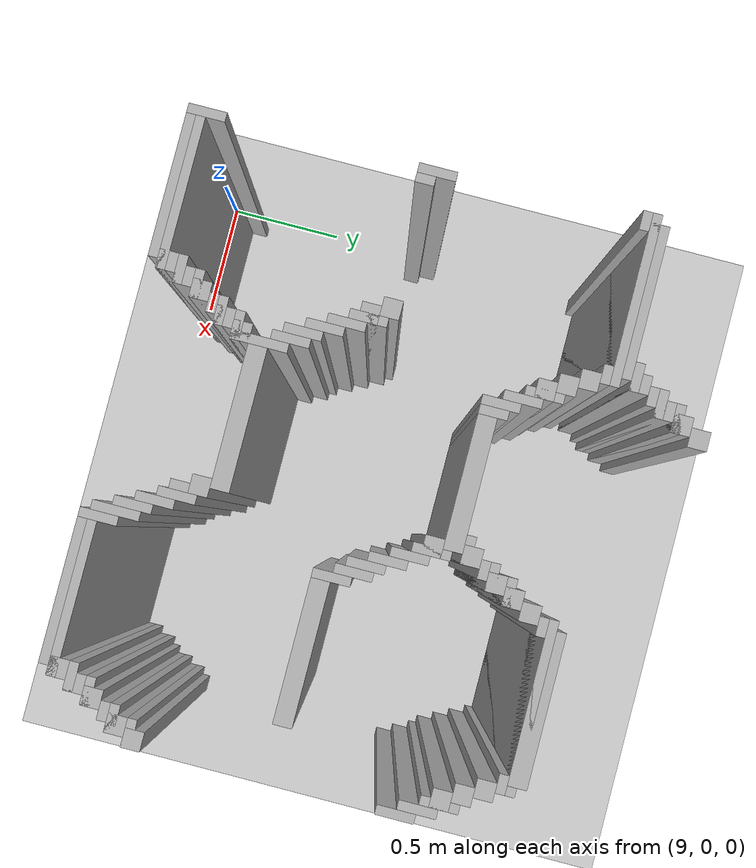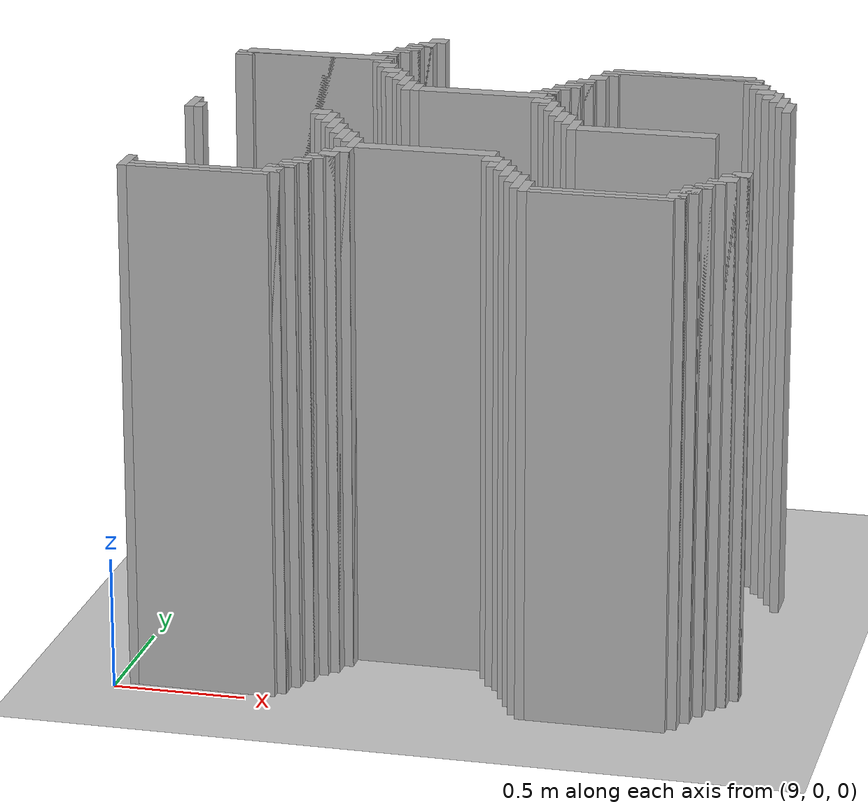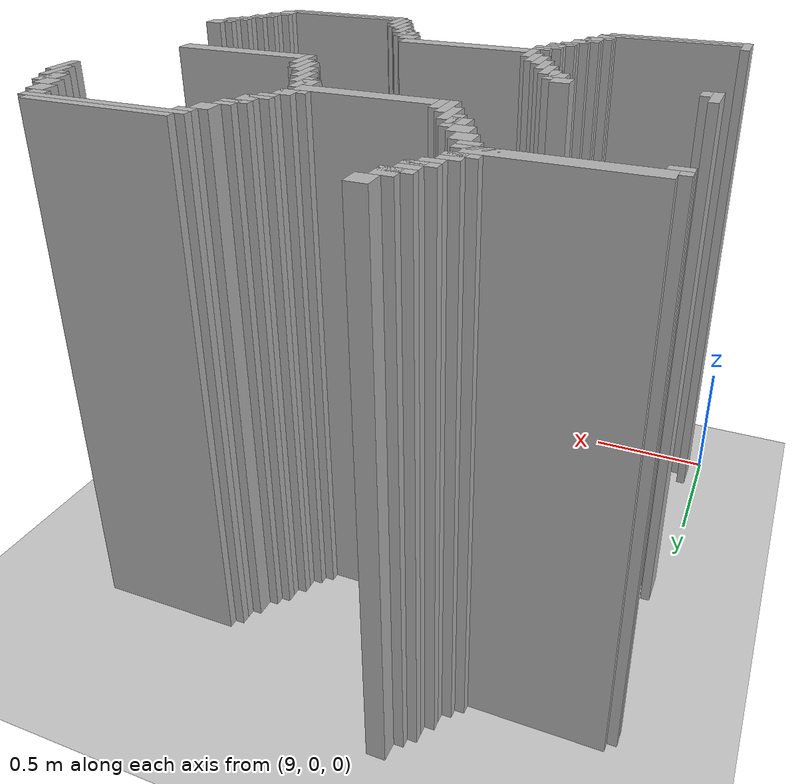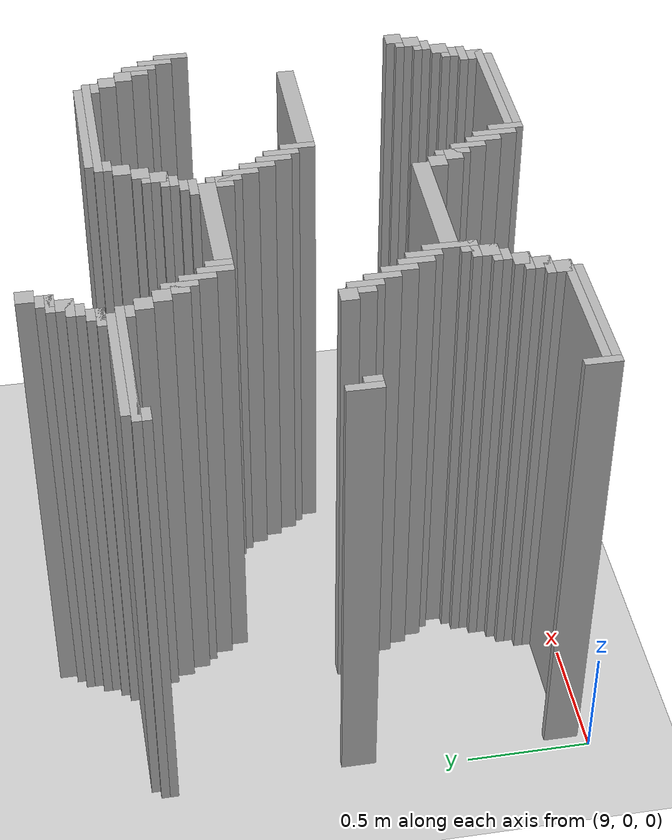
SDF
<sdf version="1.6">
 <world name="slam_world">
  <model name="ground_plane">
   <static>true</static>
   <link name="link">
    <collision name="collision">
     <geometry><plane><normal>0 0 1</normal><size>100 100</size></plane></geometry>
    </collision>
    <visual name="visual">
     <geometry><plane><normal>0 0 1</normal><size>100 100</size></plane></geometry>
     <material>
      <ambient>0.8 0.8 0.8 1</ambient>
      <diffuse>0.8 0.8 0.8 1</diffuse>
      <specular>0.8 0.8 0.8 1</specular>
     </material>
    </visual>
   </link>
  </model>
  <model name="wall_5052">
   <static>true</static>
   <pose>9.744779582366588 2.053364269141531 1.0 0 0 0</pose>
   <link name="link">
    <collision name="collision">
     <geometry><box><size>0.06960556844547564 0.06960556844547564 2.0</size></box></geometry>
    </collision>
    <visual name="visual">
     <geometry><box><size>0.06960556844547564 0.06960556844547564 2.0</size></box></geometry>
     <material><ambient>0.5 0.5 0.5 1</ambient><diffuse>0.7 0.7 0.7 1</diffuse></material>
    </visual>
   </link>
  </model>
  <model name="wall_5065">
   <static>true</static>
   <pose>9.70997679814385 1.9837587006960555 1.0 0 0 0</pose>
   <link name="link">
    <collision name="collision">
     <geometry><box><size>0.06960556844547564 0.06960556844547564 2.0</size></box></geometry>
    </collision>
    <visual name="visual">
     <geometry><box><size>0.06960556844547564 0.06960556844547564 2.0</size></box></geometry>
     <material><ambient>0.5 0.5 0.5 1</ambient><diffuse>0.7 0.7 0.7 1</diffuse></material>
    </visual>
   </link>
  </model>
  <model name="wall_5078">
   <static>true</static>
   <pose>9.692575406032482 1.9663573085846866 1.0 0 0 0</pose>
   <link name="link">
    <collision name="collision">
     <geometry><box><size>0.10440835266821345 0.03480278422273782 2.0</size></box></geometry>
    </collision>
    <visual name="visual">
     <geometry><box><size>0.10440835266821345 0.03480278422273782 2.0</size></box></geometry>
     <material><ambient>0.5 0.5 0.5 1</ambient><diffuse>0.7 0.7 0.7 1</diffuse></material>
    </visual>
   </link>
  </model>
  <model name="wall_5089">
   <static>true</static>
   <pose>9.675174013921113 1.91415313225058 1.0 0 0 0</pose>
   <link name="link">
    <collision name="collision">
     <geometry><box><size>0.06960556844547564 0.06960556844547564 2.0</size></box></geometry>
    </collision>
    <visual name="visual">
     <geometry><box><size>0.06960556844547564 0.06960556844547564 2.0</size></box></geometry>
     <material><ambient>0.5 0.5 0.5 1</ambient><diffuse>0.7 0.7 0.7 1</diffuse></material>
    </visual>
   </link>
  </model>
  <model name="wall_5101">
   <static>true</static>
   <pose>9.657772621809745 1.896751740139211 1.0 0 0 0</pose>
   <link name="link">
    <collision name="collision">
     <geometry><box><size>0.10440835266821345 0.03480278422273782 2.0</size></box></geometry>
    </collision>
    <visual name="visual">
     <geometry><box><size>0.10440835266821345 0.03480278422273782 2.0</size></box></geometry>
     <material><ambient>0.5 0.5 0.5 1</ambient><diffuse>0.7 0.7 0.7 1</diffuse></material>
    </visual>
   </link>
  </model>
  <model name="wall_5110">
   <static>true</static>
   <pose>9.640371229698376 1.8619489559164732 1.0 0 0 0</pose>
   <link name="link">
    <collision name="collision">
     <geometry><box><size>0.06960556844547564 0.03480278422273782 2.0</size></box></geometry>
    </collision>
    <visual name="visual">
     <geometry><box><size>0.06960556844547564 0.03480278422273782 2.0</size></box></geometry>
     <material><ambient>0.5 0.5 0.5 1</ambient><diffuse>0.7 0.7 0.7 1</diffuse></material>
    </visual>
   </link>
  </model>
  <model name="wall_5120">
   <static>true</static>
   <pose>9.605568445475638 1.8097447795823665 1.0 0 0 0</pose>
   <link name="link">
    <collision name="collision">
     <geometry><box><size>0.06960556844547564 0.06960556844547564 2.0</size></box></geometry>
    </collision>
    <visual name="visual">
     <geometry><box><size>0.06960556844547564 0.06960556844547564 2.0</size></box></geometry>
     <material><ambient>0.5 0.5 0.5 1</ambient><diffuse>0.7 0.7 0.7 1</diffuse></material>
    </visual>
   </link>
  </model>
  <model name="wall_5133">
   <static>true</static>
   <pose>9.588167053364268 1.7923433874709975 1.0 0 0 0</pose>
   <link name="link">
    <collision name="collision">
     <geometry><box><size>0.10440835266821345 0.03480278422273782 2.0</size></box></geometry>
    </collision>
    <visual name="visual">
     <geometry><box><size>0.10440835266821345 0.03480278422273782 2.0</size></box></geometry>
     <material><ambient>0.5 0.5 0.5 1</ambient><diffuse>0.7 0.7 0.7 1</diffuse></material>
    </visual>
   </link>
  </model>
  <model name="wall_5145">
   <static>true</static>
   <pose>9.327146171693736 1.740139211136891 1.0 0 0 0</pose>
   <link name="link">
    <collision name="collision">
     <geometry><box><size>0.5568445475638051 0.06960556844547564 2.0</size></box></geometry>
    </collision>
    <visual name="visual">
     <geometry><box><size>0.5568445475638051 0.06960556844547564 2.0</size></box></geometry>
     <material><ambient>0.5 0.5 0.5 1</ambient><diffuse>0.7 0.7 0.7 1</diffuse></material>
    </visual>
   </link>
  </model>
  <model name="wall_5146">
   <static>true</static>
   <pose>10.788863109048723 1.740139211136891 1.0 0 0 0</pose>
   <link name="link">
    <collision name="collision">
     <geometry><box><size>0.5568445475638051 0.06960556844547564 2.0</size></box></geometry>
    </collision>
    <visual name="visual">
     <geometry><box><size>0.5568445475638051 0.06960556844547564 2.0</size></box></geometry>
     <material><ambient>0.5 0.5 0.5 1</ambient><diffuse>0.7 0.7 0.7 1</diffuse></material>
    </visual>
   </link>
  </model>
  <model name="wall_5156">
   <static>true</static>
   <pose>9.327146171693736 1.722737819025522 1.0 0 0 0</pose>
   <link name="link">
    <collision name="collision">
     <geometry><box><size>0.6264501160092807 0.03480278422273782 2.0</size></box></geometry>
    </collision>
    <visual name="visual">
     <geometry><box><size>0.6264501160092807 0.03480278422273782 2.0</size></box></geometry>
     <material><ambient>0.5 0.5 0.5 1</ambient><diffuse>0.7 0.7 0.7 1</diffuse></material>
    </visual>
   </link>
  </model>
  <model name="wall_5157">
   <static>true</static>
   <pose>10.788863109048723 1.722737819025522 1.0 0 0 0</pose>
   <link name="link">
    <collision name="collision">
     <geometry><box><size>0.6264501160092807 0.03480278422273782 2.0</size></box></geometry>
    </collision>
    <visual name="visual">
     <geometry><box><size>0.6264501160092807 0.03480278422273782 2.0</size></box></geometry>
     <material><ambient>0.5 0.5 0.5 1</ambient><diffuse>0.7 0.7 0.7 1</diffuse></material>
    </visual>
   </link>
  </model>
  <model name="wall_5170">
   <static>true</static>
   <pose>9.048723897911833 1.6879350348027842 1.0 0 0 0</pose>
   <link name="link">
    <collision name="collision">
     <geometry><box><size>0.06960556844547564 0.03480278422273782 2.0</size></box></geometry>
    </collision>
    <visual name="visual">
     <geometry><box><size>0.06960556844547564 0.03480278422273782 2.0</size></box></geometry>
     <material><ambient>0.5 0.5 0.5 1</ambient><diffuse>0.7 0.7 0.7 1</diffuse></material>
    </visual>
   </link>
  </model>
  <model name="wall_5171">
   <static>true</static>
   <pose>9.605568445475638 1.6879350348027842 1.0 0 0 0</pose>
   <link name="link">
    <collision name="collision">
     <geometry><box><size>0.06960556844547564 0.03480278422273782 2.0</size></box></geometry>
    </collision>
    <visual name="visual">
     <geometry><box><size>0.06960556844547564 0.03480278422273782 2.0</size></box></geometry>
     <material><ambient>0.5 0.5 0.5 1</ambient><diffuse>0.7 0.7 0.7 1</diffuse></material>
    </visual>
   </link>
  </model>
  <model name="wall_5172">
   <static>true</static>
   <pose>10.51044083526682 1.6879350348027842 1.0 0 0 0</pose>
   <link name="link">
    <collision name="collision">
     <geometry><box><size>0.06960556844547564 0.03480278422273782 2.0</size></box></geometry>
    </collision>
    <visual name="visual">
     <geometry><box><size>0.06960556844547564 0.03480278422273782 2.0</size></box></geometry>
     <material><ambient>0.5 0.5 0.5 1</ambient><diffuse>0.7 0.7 0.7 1</diffuse></material>
    </visual>
   </link>
  </model>
  <model name="wall_5173">
   <static>true</static>
   <pose>11.067285382830626 1.6879350348027842 1.0 0 0 0</pose>
   <link name="link">
    <collision name="collision">
     <geometry><box><size>0.06960556844547564 0.03480278422273782 2.0</size></box></geometry>
    </collision>
    <visual name="visual">
     <geometry><box><size>0.06960556844547564 0.03480278422273782 2.0</size></box></geometry>
     <material><ambient>0.5 0.5 0.5 1</ambient><diffuse>0.7 0.7 0.7 1</diffuse></material>
    </visual>
   </link>
  </model>
  <model name="wall_5187">
   <static>true</static>
   <pose>9.640371229698376 1.6357308584686774 1.0 0 0 0</pose>
   <link name="link">
    <collision name="collision">
     <geometry><box><size>0.06960556844547564 0.06960556844547564 2.0</size></box></geometry>
    </collision>
    <visual name="visual">
     <geometry><box><size>0.06960556844547564 0.06960556844547564 2.0</size></box></geometry>
     <material><ambient>0.5 0.5 0.5 1</ambient><diffuse>0.7 0.7 0.7 1</diffuse></material>
    </visual>
   </link>
  </model>
  <model name="wall_5188">
   <static>true</static>
   <pose>10.475638051044083 1.6357308584686774 1.0 0 0 0</pose>
   <link name="link">
    <collision name="collision">
     <geometry><box><size>0.06960556844547564 0.06960556844547564 2.0</size></box></geometry>
    </collision>
    <visual name="visual">
     <geometry><box><size>0.06960556844547564 0.06960556844547564 2.0</size></box></geometry>
     <material><ambient>0.5 0.5 0.5 1</ambient><diffuse>0.7 0.7 0.7 1</diffuse></material>
    </visual>
   </link>
  </model>
  <model name="wall_5189">
   <static>true</static>
   <pose>11.102088167053363 1.6357308584686774 1.0 0 0 0</pose>
   <link name="link">
    <collision name="collision">
     <geometry><box><size>0.06960556844547564 0.06960556844547564 2.0</size></box></geometry>
    </collision>
    <visual name="visual">
     <geometry><box><size>0.06960556844547564 0.06960556844547564 2.0</size></box></geometry>
     <material><ambient>0.5 0.5 0.5 1</ambient><diffuse>0.7 0.7 0.7 1</diffuse></material>
    </visual>
   </link>
  </model>
  <model name="wall_5203">
   <static>true</static>
   <pose>9.675174013921113 1.5661252900232019 1.0 0 0 0</pose>
   <link name="link">
    <collision name="collision">
     <geometry><box><size>0.06960556844547564 0.06960556844547564 2.0</size></box></geometry>
    </collision>
    <visual name="visual">
     <geometry><box><size>0.06960556844547564 0.06960556844547564 2.0</size></box></geometry>
     <material><ambient>0.5 0.5 0.5 1</ambient><diffuse>0.7 0.7 0.7 1</diffuse></material>
    </visual>
   </link>
  </model>
  <model name="wall_5204">
   <static>true</static>
   <pose>10.440835266821345 1.5661252900232019 1.0 0 0 0</pose>
   <link name="link">
    <collision name="collision">
     <geometry><box><size>0.06960556844547564 0.06960556844547564 2.0</size></box></geometry>
    </collision>
    <visual name="visual">
     <geometry><box><size>0.06960556844547564 0.06960556844547564 2.0</size></box></geometry>
     <material><ambient>0.5 0.5 0.5 1</ambient><diffuse>0.7 0.7 0.7 1</diffuse></material>
    </visual>
   </link>
  </model>
  <model name="wall_5205">
   <static>true</static>
   <pose>11.1368909512761 1.5661252900232019 1.0 0 0 0</pose>
   <link name="link">
    <collision name="collision">
     <geometry><box><size>0.06960556844547564 0.06960556844547564 2.0</size></box></geometry>
    </collision>
    <visual name="visual">
     <geometry><box><size>0.06960556844547564 0.06960556844547564 2.0</size></box></geometry>
     <material><ambient>0.5 0.5 0.5 1</ambient><diffuse>0.7 0.7 0.7 1</diffuse></material>
    </visual>
   </link>
  </model>
  <model name="wall_5219">
   <static>true</static>
   <pose>9.72737819025522 1.4965197215777262 1.0 0 0 0</pose>
   <link name="link">
    <collision name="collision">
     <geometry><box><size>0.03480278422273782 0.13921113689095127 2.0</size></box></geometry>
    </collision>
    <visual name="visual">
     <geometry><box><size>0.03480278422273782 0.13921113689095127 2.0</size></box></geometry>
     <material><ambient>0.5 0.5 0.5 1</ambient><diffuse>0.7 0.7 0.7 1</diffuse></material>
    </visual>
   </link>
  </model>
  <model name="wall_5220">
   <static>true</static>
   <pose>10.423433874709977 1.548723897911833 1.0 0 0 0</pose>
   <link name="link">
    <collision name="collision">
     <geometry><box><size>0.10440835266821345 0.03480278422273782 2.0</size></box></geometry>
    </collision>
    <visual name="visual">
     <geometry><box><size>0.10440835266821345 0.03480278422273782 2.0</size></box></geometry>
     <material><ambient>0.5 0.5 0.5 1</ambient><diffuse>0.7 0.7 0.7 1</diffuse></material>
    </visual>
   </link>
  </model>
  <model name="wall_5221">
   <static>true</static>
   <pose>11.189095127610209 1.4965197215777262 1.0 0 0 0</pose>
   <link name="link">
    <collision name="collision">
     <geometry><box><size>0.03480278422273782 0.13921113689095127 2.0</size></box></geometry>
    </collision>
    <visual name="visual">
     <geometry><box><size>0.03480278422273782 0.13921113689095127 2.0</size></box></geometry>
     <material><ambient>0.5 0.5 0.5 1</ambient><diffuse>0.7 0.7 0.7 1</diffuse></material>
    </visual>
   </link>
  </model>
  <model name="wall_5234">
   <static>true</static>
   <pose>9.70997679814385 1.4965197215777262 1.0 0 0 0</pose>
   <link name="link">
    <collision name="collision">
     <geometry><box><size>0.06960556844547564 0.06960556844547564 2.0</size></box></geometry>
    </collision>
    <visual name="visual">
     <geometry><box><size>0.06960556844547564 0.06960556844547564 2.0</size></box></geometry>
     <material><ambient>0.5 0.5 0.5 1</ambient><diffuse>0.7 0.7 0.7 1</diffuse></material>
    </visual>
   </link>
  </model>
  <model name="wall_5235">
   <static>true</static>
   <pose>10.406032482598608 1.4965197215777262 1.0 0 0 0</pose>
   <link name="link">
    <collision name="collision">
     <geometry><box><size>0.06960556844547564 0.06960556844547564 2.0</size></box></geometry>
    </collision>
    <visual name="visual">
     <geometry><box><size>0.06960556844547564 0.06960556844547564 2.0</size></box></geometry>
     <material><ambient>0.5 0.5 0.5 1</ambient><diffuse>0.7 0.7 0.7 1</diffuse></material>
    </visual>
   </link>
  </model>
  <model name="wall_5236">
   <static>true</static>
   <pose>11.17169373549884 1.4965197215777262 1.0 0 0 0</pose>
   <link name="link">
    <collision name="collision">
     <geometry><box><size>0.06960556844547564 0.06960556844547564 2.0</size></box></geometry>
    </collision>
    <visual name="visual">
     <geometry><box><size>0.06960556844547564 0.06960556844547564 2.0</size></box></geometry>
     <material><ambient>0.5 0.5 0.5 1</ambient><diffuse>0.7 0.7 0.7 1</diffuse></material>
    </visual>
   </link>
  </model>
  <model name="wall_5248">
   <static>true</static>
   <pose>9.762180974477959 1.4269141531322505 1.0 0 0 0</pose>
   <link name="link">
    <collision name="collision">
     <geometry><box><size>0.03480278422273782 0.13921113689095127 2.0</size></box></geometry>
    </collision>
    <visual name="visual">
     <geometry><box><size>0.03480278422273782 0.13921113689095127 2.0</size></box></geometry>
     <material><ambient>0.5 0.5 0.5 1</ambient><diffuse>0.7 0.7 0.7 1</diffuse></material>
    </visual>
   </link>
  </model>
  <model name="wall_5249">
   <static>true</static>
   <pose>10.38863109048724 1.4791183294663572 1.0 0 0 0</pose>
   <link name="link">
    <collision name="collision">
     <geometry><box><size>0.10440835266821345 0.03480278422273782 2.0</size></box></geometry>
    </collision>
    <visual name="visual">
     <geometry><box><size>0.10440835266821345 0.03480278422273782 2.0</size></box></geometry>
     <material><ambient>0.5 0.5 0.5 1</ambient><diffuse>0.7 0.7 0.7 1</diffuse></material>
    </visual>
   </link>
  </model>
  <model name="wall_5250">
   <static>true</static>
   <pose>11.223897911832946 1.4269141531322505 1.0 0 0 0</pose>
   <link name="link">
    <collision name="collision">
     <geometry><box><size>0.03480278422273782 0.13921113689095127 2.0</size></box></geometry>
    </collision>
    <visual name="visual">
     <geometry><box><size>0.03480278422273782 0.13921113689095127 2.0</size></box></geometry>
     <material><ambient>0.5 0.5 0.5 1</ambient><diffuse>0.7 0.7 0.7 1</diffuse></material>
    </visual>
   </link>
  </model>
  <model name="wall_5262">
   <static>true</static>
   <pose>10.37122969837587 1.4443155452436194 1.0 0 0 0</pose>
   <link name="link">
    <collision name="collision">
     <geometry><box><size>0.06960556844547564 0.03480278422273782 2.0</size></box></geometry>
    </collision>
    <visual name="visual">
     <geometry><box><size>0.06960556844547564 0.03480278422273782 2.0</size></box></geometry>
     <material><ambient>0.5 0.5 0.5 1</ambient><diffuse>0.7 0.7 0.7 1</diffuse></material>
    </visual>
   </link>
  </model>
  <model name="wall_5274">
   <static>true</static>
   <pose>9.796983758700696 1.357308584686775 1.0 0 0 0</pose>
   <link name="link">
    <collision name="collision">
     <geometry><box><size>0.03480278422273782 0.13921113689095127 2.0</size></box></geometry>
    </collision>
    <visual name="visual">
     <geometry><box><size>0.03480278422273782 0.13921113689095127 2.0</size></box></geometry>
     <material><ambient>0.5 0.5 0.5 1</ambient><diffuse>0.7 0.7 0.7 1</diffuse></material>
    </visual>
   </link>
  </model>
  <model name="wall_5275">
   <static>true</static>
   <pose>10.336426914153131 1.3921113689095126 1.0 0 0 0</pose>
   <link name="link">
    <collision name="collision">
     <geometry><box><size>0.06960556844547564 0.06960556844547564 2.0</size></box></geometry>
    </collision>
    <visual name="visual">
     <geometry><box><size>0.06960556844547564 0.06960556844547564 2.0</size></box></geometry>
     <material><ambient>0.5 0.5 0.5 1</ambient><diffuse>0.7 0.7 0.7 1</diffuse></material>
    </visual>
   </link>
  </model>
  <model name="wall_5276">
   <static>true</static>
   <pose>11.258700696055683 1.357308584686775 1.0 0 0 0</pose>
   <link name="link">
    <collision name="collision">
     <geometry><box><size>0.03480278422273782 0.13921113689095127 2.0</size></box></geometry>
    </collision>
    <visual name="visual">
     <geometry><box><size>0.03480278422273782 0.13921113689095127 2.0</size></box></geometry>
     <material><ambient>0.5 0.5 0.5 1</ambient><diffuse>0.7 0.7 0.7 1</diffuse></material>
    </visual>
   </link>
  </model>
  <model name="wall_5288">
   <static>true</static>
   <pose>9.831786542923433 1.339907192575406 1.0 0 0 0</pose>
   <link name="link">
    <collision name="collision">
     <geometry><box><size>0.03480278422273782 0.10440835266821345 2.0</size></box></geometry>
    </collision>
    <visual name="visual">
     <geometry><box><size>0.03480278422273782 0.10440835266821345 2.0</size></box></geometry>
     <material><ambient>0.5 0.5 0.5 1</ambient><diffuse>0.7 0.7 0.7 1</diffuse></material>
    </visual>
   </link>
  </model>
  <model name="wall_5289">
   <static>true</static>
   <pose>10.319025522041763 1.3747099767981439 1.0 0 0 0</pose>
   <link name="link">
    <collision name="collision">
     <geometry><box><size>0.10440835266821345 0.03480278422273782 2.0</size></box></geometry>
    </collision>
    <visual name="visual">
     <geometry><box><size>0.10440835266821345 0.03480278422273782 2.0</size></box></geometry>
     <material><ambient>0.5 0.5 0.5 1</ambient><diffuse>0.7 0.7 0.7 1</diffuse></material>
    </visual>
   </link>
  </model>
  <model name="wall_5301">
   <static>true</static>
   <pose>10.092807424593968 1.322505800464037 1.0 0 0 0</pose>
   <link name="link">
    <collision name="collision">
     <geometry><box><size>0.4872389791183295 0.06960556844547564 2.0</size></box></geometry>
    </collision>
    <visual name="visual">
     <geometry><box><size>0.4872389791183295 0.06960556844547564 2.0</size></box></geometry>
     <material><ambient>0.5 0.5 0.5 1</ambient><diffuse>0.7 0.7 0.7 1</diffuse></material>
    </visual>
   </link>
  </model>
  <model name="wall_5313">
   <static>true</static>
   <pose>10.3538283062645 1.2529002320185614 1.0 0 0 0</pose>
   <link name="link">
    <collision name="collision">
     <geometry><box><size>0.03480278422273782 0.13921113689095127 2.0</size></box></geometry>
    </collision>
    <visual name="visual">
     <geometry><box><size>0.03480278422273782 0.13921113689095127 2.0</size></box></geometry>
     <material><ambient>0.5 0.5 0.5 1</ambient><diffuse>0.7 0.7 0.7 1</diffuse></material>
    </visual>
   </link>
  </model>
  <model name="wall_5326">
   <static>true</static>
   <pose>10.336426914153131 1.2529002320185614 1.0 0 0 0</pose>
   <link name="link">
    <collision name="collision">
     <geometry><box><size>0.06960556844547564 0.06960556844547564 2.0</size></box></geometry>
    </collision>
    <visual name="visual">
     <geometry><box><size>0.06960556844547564 0.06960556844547564 2.0</size></box></geometry>
     <material><ambient>0.5 0.5 0.5 1</ambient><diffuse>0.7 0.7 0.7 1</diffuse></material>
    </visual>
   </link>
  </model>
  <model name="wall_5340">
   <static>true</static>
   <pose>10.38863109048724 1.1832946635730859 1.0 0 0 0</pose>
   <link name="link">
    <collision name="collision">
     <geometry><box><size>0.03480278422273782 0.13921113689095127 2.0</size></box></geometry>
    </collision>
    <visual name="visual">
     <geometry><box><size>0.03480278422273782 0.13921113689095127 2.0</size></box></geometry>
     <material><ambient>0.5 0.5 0.5 1</ambient><diffuse>0.7 0.7 0.7 1</diffuse></material>
    </visual>
   </link>
  </model>
  <model name="wall_5363">
   <static>true</static>
   <pose>10.423433874709977 1.1136890951276102 1.0 0 0 0</pose>
   <link name="link">
    <collision name="collision">
     <geometry><box><size>0.03480278422273782 0.13921113689095127 2.0</size></box></geometry>
    </collision>
    <visual name="visual">
     <geometry><box><size>0.03480278422273782 0.13921113689095127 2.0</size></box></geometry>
     <material><ambient>0.5 0.5 0.5 1</ambient><diffuse>0.7 0.7 0.7 1</diffuse></material>
    </visual>
   </link>
  </model>
  <model name="wall_5377">
   <static>true</static>
   <pose>10.458236658932714 1.0440835266821344 1.0 0 0 0</pose>
   <link name="link">
    <collision name="collision">
     <geometry><box><size>0.03480278422273782 0.13921113689095127 2.0</size></box></geometry>
    </collision>
    <visual name="visual">
     <geometry><box><size>0.03480278422273782 0.13921113689095127 2.0</size></box></geometry>
     <material><ambient>0.5 0.5 0.5 1</ambient><diffuse>0.7 0.7 0.7 1</diffuse></material>
    </visual>
   </link>
  </model>
  <model name="wall_5391">
   <static>true</static>
   <pose>10.493039443155451 1.0092807424593968 1.0 0 0 0</pose>
   <link name="link">
    <collision name="collision">
     <geometry><box><size>0.03480278422273782 0.13921113689095127 2.0</size></box></geometry>
    </collision>
    <visual name="visual">
     <geometry><box><size>0.03480278422273782 0.13921113689095127 2.0</size></box></geometry>
     <material><ambient>0.5 0.5 0.5 1</ambient><diffuse>0.7 0.7 0.7 1</diffuse></material>
    </visual>
   </link>
  </model>
  <model name="wall_5410">
   <static>true</static>
   <pose>9.066125290023201 0.9396751740139211 1.0 0 0 0</pose>
   <link name="link">
    <collision name="collision">
     <geometry><box><size>0.03480278422273782 0.13921113689095127 2.0</size></box></geometry>
    </collision>
    <visual name="visual">
     <geometry><box><size>0.03480278422273782 0.13921113689095127 2.0</size></box></geometry>
     <material><ambient>0.5 0.5 0.5 1</ambient><diffuse>0.7 0.7 0.7 1</diffuse></material>
    </visual>
   </link>
  </model>
  <model name="wall_5411">
   <static>true</static>
   <pose>10.52784222737819 0.9396751740139211 1.0 0 0 0</pose>
   <link name="link">
    <collision name="collision">
     <geometry><box><size>0.03480278422273782 0.13921113689095127 2.0</size></box></geometry>
    </collision>
    <visual name="visual">
     <geometry><box><size>0.03480278422273782 0.13921113689095127 2.0</size></box></geometry>
     <material><ambient>0.5 0.5 0.5 1</ambient><diffuse>0.7 0.7 0.7 1</diffuse></material>
    </visual>
   </link>
  </model>
  <model name="wall_5430">
   <static>true</static>
   <pose>9.100928074245939 0.9048723897911832 1.0 0 0 0</pose>
   <link name="link">
    <collision name="collision">
     <geometry><box><size>0.03480278422273782 0.06960556844547564 2.0</size></box></geometry>
    </collision>
    <visual name="visual">
     <geometry><box><size>0.03480278422273782 0.06960556844547564 2.0</size></box></geometry>
     <material><ambient>0.5 0.5 0.5 1</ambient><diffuse>0.7 0.7 0.7 1</diffuse></material>
    </visual>
   </link>
  </model>
  <model name="wall_5431">
   <static>true</static>
   <pose>9.5707656612529 0.9048723897911832 1.0 0 0 0</pose>
   <link name="link">
    <collision name="collision">
     <geometry><box><size>0.06960556844547564 0.06960556844547564 2.0</size></box></geometry>
    </collision>
    <visual name="visual">
     <geometry><box><size>0.06960556844547564 0.06960556844547564 2.0</size></box></geometry>
     <material><ambient>0.5 0.5 0.5 1</ambient><diffuse>0.7 0.7 0.7 1</diffuse></material>
    </visual>
   </link>
  </model>
  <model name="wall_5432">
   <static>true</static>
   <pose>10.806264501160092 0.9048723897911832 1.0 0 0 0</pose>
   <link name="link">
    <collision name="collision">
     <geometry><box><size>0.5220417633410672 0.06960556844547564 2.0</size></box></geometry>
    </collision>
    <visual name="visual">
     <geometry><box><size>0.5220417633410672 0.06960556844547564 2.0</size></box></geometry>
     <material><ambient>0.5 0.5 0.5 1</ambient><diffuse>0.7 0.7 0.7 1</diffuse></material>
    </visual>
   </link>
  </model>
  <model name="wall_5444">
   <static>true</static>
   <pose>9.622969837587007 0.8352668213457076 1.0 0 0 0</pose>
   <link name="link">
    <collision name="collision">
     <geometry><box><size>0.03480278422273782 0.13921113689095127 2.0</size></box></geometry>
    </collision>
    <visual name="visual">
     <geometry><box><size>0.03480278422273782 0.13921113689095127 2.0</size></box></geometry>
     <material><ambient>0.5 0.5 0.5 1</ambient><diffuse>0.7 0.7 0.7 1</diffuse></material>
    </visual>
   </link>
  </model>
  <model name="wall_5454">
   <static>true</static>
   <pose>9.605568445475638 0.8352668213457076 1.0 0 0 0</pose>
   <link name="link">
    <collision name="collision">
     <geometry><box><size>0.06960556844547564 0.06960556844547564 2.0</size></box></geometry>
    </collision>
    <visual name="visual">
     <geometry><box><size>0.06960556844547564 0.06960556844547564 2.0</size></box></geometry>
     <material><ambient>0.5 0.5 0.5 1</ambient><diffuse>0.7 0.7 0.7 1</diffuse></material>
    </visual>
   </link>
  </model>
  <model name="wall_5464">
   <static>true</static>
   <pose>9.657772621809745 0.765661252900232 1.0 0 0 0</pose>
   <link name="link">
    <collision name="collision">
     <geometry><box><size>0.03480278422273782 0.13921113689095127 2.0</size></box></geometry>
    </collision>
    <visual name="visual">
     <geometry><box><size>0.03480278422273782 0.13921113689095127 2.0</size></box></geometry>
     <material><ambient>0.5 0.5 0.5 1</ambient><diffuse>0.7 0.7 0.7 1</diffuse></material>
    </visual>
   </link>
  </model>
  <model name="wall_5480">
   <static>true</static>
   <pose>9.692575406032482 0.6960556844547563 1.0 0 0 0</pose>
   <link name="link">
    <collision name="collision">
     <geometry><box><size>0.03480278422273782 0.13921113689095127 2.0</size></box></geometry>
    </collision>
    <visual name="visual">
     <geometry><box><size>0.03480278422273782 0.13921113689095127 2.0</size></box></geometry>
     <material><ambient>0.5 0.5 0.5 1</ambient><diffuse>0.7 0.7 0.7 1</diffuse></material>
    </visual>
   </link>
  </model>
  <model name="wall_5490">
   <static>true</static>
   <pose>9.72737819025522 0.6264501160092807 1.0 0 0 0</pose>
   <link name="link">
    <collision name="collision">
     <geometry><box><size>0.03480278422273782 0.13921113689095127 2.0</size></box></geometry>
    </collision>
    <visual name="visual">
     <geometry><box><size>0.03480278422273782 0.13921113689095127 2.0</size></box></geometry>
     <material><ambient>0.5 0.5 0.5 1</ambient><diffuse>0.7 0.7 0.7 1</diffuse></material>
    </visual>
   </link>
  </model>
  <model name="wall_5500">
   <static>true</static>
   <pose>9.762180974477959 0.5916473317865429 1.0 0 0 0</pose>
   <link name="link">
    <collision name="collision">
     <geometry><box><size>0.03480278422273782 0.13921113689095127 2.0</size></box></geometry>
    </collision>
    <visual name="visual">
     <geometry><box><size>0.03480278422273782 0.13921113689095127 2.0</size></box></geometry>
     <material><ambient>0.5 0.5 0.5 1</ambient><diffuse>0.7 0.7 0.7 1</diffuse></material>
    </visual>
   </link>
  </model>
  <model name="wall_5516">
   <static>true</static>
   <pose>9.796983758700696 0.4872389791183295 1.0 0 0 0</pose>
   <link name="link">
    <collision name="collision">
     <geometry><box><size>0.03480278422273782 0.2088167053364269 2.0</size></box></geometry>
    </collision>
    <visual name="visual">
     <geometry><box><size>0.03480278422273782 0.2088167053364269 2.0</size></box></geometry>
     <material><ambient>0.5 0.5 0.5 1</ambient><diffuse>0.7 0.7 0.7 1</diffuse></material>
    </visual>
   </link>
  </model>
  <model name="wall_5532">
   <static>true</static>
   <pose>10.075406032482599 0.4872389791183295 1.0 0 0 0</pose>
   <link name="link">
    <collision name="collision">
     <geometry><box><size>0.5220417633410672 0.06960556844547564 2.0</size></box></geometry>
    </collision>
    <visual name="visual">
     <geometry><box><size>0.5220417633410672 0.06960556844547564 2.0</size></box></geometry>
     <material><ambient>0.5 0.5 0.5 1</ambient><diffuse>0.7 0.7 0.7 1</diffuse></material>
    </visual>
   </link>
  </model>
  <model name="wall_5549">
   <static>true</static>
   <pose>9.779582366589327 0.4176334106728538 1.0 0 0 0</pose>
   <link name="link">
    <collision name="collision">
     <geometry><box><size>0.06960556844547564 0.06960556844547564 2.0</size></box></geometry>
    </collision>
    <visual name="visual">
     <geometry><box><size>0.06960556844547564 0.06960556844547564 2.0</size></box></geometry>
     <material><ambient>0.5 0.5 0.5 1</ambient><diffuse>0.7 0.7 0.7 1</diffuse></material>
    </visual>
   </link>
  </model>
  <model name="wall_5550">
   <static>true</static>
   <pose>10.336426914153131 0.4176334106728538 1.0 0 0 0</pose>
   <link name="link">
    <collision name="collision">
     <geometry><box><size>0.06960556844547564 0.06960556844547564 2.0</size></box></geometry>
    </collision>
    <visual name="visual">
     <geometry><box><size>0.06960556844547564 0.06960556844547564 2.0</size></box></geometry>
     <material><ambient>0.5 0.5 0.5 1</ambient><diffuse>0.7 0.7 0.7 1</diffuse></material>
    </visual>
   </link>
  </model>
  <model name="wall_5551">
   <static>true</static>
   <pose>11.241299303944315 0.4176334106728538 1.0 0 0 0</pose>
   <link name="link">
    <collision name="collision">
     <geometry><box><size>0.06960556844547564 0.06960556844547564 2.0</size></box></geometry>
    </collision>
    <visual name="visual">
     <geometry><box><size>0.06960556844547564 0.06960556844547564 2.0</size></box></geometry>
     <material><ambient>0.5 0.5 0.5 1</ambient><diffuse>0.7 0.7 0.7 1</diffuse></material>
    </visual>
   </link>
  </model>
  <model name="wall_5569">
   <static>true</static>
   <pose>9.762180974477959 0.4002320185614849 1.0 0 0 0</pose>
   <link name="link">
    <collision name="collision">
     <geometry><box><size>0.10440835266821345 0.03480278422273782 2.0</size></box></geometry>
    </collision>
    <visual name="visual">
     <geometry><box><size>0.10440835266821345 0.03480278422273782 2.0</size></box></geometry>
     <material><ambient>0.5 0.5 0.5 1</ambient><diffuse>0.7 0.7 0.7 1</diffuse></material>
    </visual>
   </link>
  </model>
  <model name="wall_5570">
   <static>true</static>
   <pose>10.38863109048724 0.34802784222737815 1.0 0 0 0</pose>
   <link name="link">
    <collision name="collision">
     <geometry><box><size>0.03480278422273782 0.13921113689095127 2.0</size></box></geometry>
    </collision>
    <visual name="visual">
     <geometry><box><size>0.03480278422273782 0.13921113689095127 2.0</size></box></geometry>
     <material><ambient>0.5 0.5 0.5 1</ambient><diffuse>0.7 0.7 0.7 1</diffuse></material>
    </visual>
   </link>
  </model>
  <model name="wall_5571">
   <static>true</static>
   <pose>11.223897911832946 0.4002320185614849 1.0 0 0 0</pose>
   <link name="link">
    <collision name="collision">
     <geometry><box><size>0.10440835266821345 0.03480278422273782 2.0</size></box></geometry>
    </collision>
    <visual name="visual">
     <geometry><box><size>0.10440835266821345 0.03480278422273782 2.0</size></box></geometry>
     <material><ambient>0.5 0.5 0.5 1</ambient><diffuse>0.7 0.7 0.7 1</diffuse></material>
    </visual>
   </link>
  </model>
  <model name="wall_5589">
   <static>true</static>
   <pose>9.744779582366588 0.34802784222737815 1.0 0 0 0</pose>
   <link name="link">
    <collision name="collision">
     <geometry><box><size>0.06960556844547564 0.06960556844547564 2.0</size></box></geometry>
    </collision>
    <visual name="visual">
     <geometry><box><size>0.06960556844547564 0.06960556844547564 2.0</size></box></geometry>
     <material><ambient>0.5 0.5 0.5 1</ambient><diffuse>0.7 0.7 0.7 1</diffuse></material>
    </visual>
   </link>
  </model>
  <model name="wall_5590">
   <static>true</static>
   <pose>10.37122969837587 0.34802784222737815 1.0 0 0 0</pose>
   <link name="link">
    <collision name="collision">
     <geometry><box><size>0.06960556844547564 0.06960556844547564 2.0</size></box></geometry>
    </collision>
    <visual name="visual">
     <geometry><box><size>0.06960556844547564 0.06960556844547564 2.0</size></box></geometry>
     <material><ambient>0.5 0.5 0.5 1</ambient><diffuse>0.7 0.7 0.7 1</diffuse></material>
    </visual>
   </link>
  </model>
  <model name="wall_5591">
   <static>true</static>
   <pose>11.206496519721577 0.34802784222737815 1.0 0 0 0</pose>
   <link name="link">
    <collision name="collision">
     <geometry><box><size>0.06960556844547564 0.06960556844547564 2.0</size></box></geometry>
    </collision>
    <visual name="visual">
     <geometry><box><size>0.06960556844547564 0.06960556844547564 2.0</size></box></geometry>
     <material><ambient>0.5 0.5 0.5 1</ambient><diffuse>0.7 0.7 0.7 1</diffuse></material>
    </visual>
   </link>
  </model>
  <model name="wall_5609">
   <static>true</static>
   <pose>9.72737819025522 0.3306264501160093 1.0 0 0 0</pose>
   <link name="link">
    <collision name="collision">
     <geometry><box><size>0.10440835266821345 0.03480278422273782 2.0</size></box></geometry>
    </collision>
    <visual name="visual">
     <geometry><box><size>0.10440835266821345 0.03480278422273782 2.0</size></box></geometry>
     <material><ambient>0.5 0.5 0.5 1</ambient><diffuse>0.7 0.7 0.7 1</diffuse></material>
    </visual>
   </link>
  </model>
  <model name="wall_5610">
   <static>true</static>
   <pose>10.423433874709977 0.27842227378190254 1.0 0 0 0</pose>
   <link name="link">
    <collision name="collision">
     <geometry><box><size>0.03480278422273782 0.13921113689095127 2.0</size></box></geometry>
    </collision>
    <visual name="visual">
     <geometry><box><size>0.03480278422273782 0.13921113689095127 2.0</size></box></geometry>
     <material><ambient>0.5 0.5 0.5 1</ambient><diffuse>0.7 0.7 0.7 1</diffuse></material>
    </visual>
   </link>
  </model>
  <model name="wall_5611">
   <static>true</static>
   <pose>11.189095127610209 0.3306264501160093 1.0 0 0 0</pose>
   <link name="link">
    <collision name="collision">
     <geometry><box><size>0.10440835266821345 0.03480278422273782 2.0</size></box></geometry>
    </collision>
    <visual name="visual">
     <geometry><box><size>0.10440835266821345 0.03480278422273782 2.0</size></box></geometry>
     <material><ambient>0.5 0.5 0.5 1</ambient><diffuse>0.7 0.7 0.7 1</diffuse></material>
    </visual>
   </link>
  </model>
  <model name="wall_5622">
   <static>true</static>
   <pose>9.70997679814385 0.29582366589327147 1.0 0 0 0</pose>
   <link name="link">
    <collision name="collision">
     <geometry><box><size>0.06960556844547564 0.03480278422273782 2.0</size></box></geometry>
    </collision>
    <visual name="visual">
     <geometry><box><size>0.06960556844547564 0.03480278422273782 2.0</size></box></geometry>
     <material><ambient>0.5 0.5 0.5 1</ambient><diffuse>0.7 0.7 0.7 1</diffuse></material>
    </visual>
   </link>
  </model>
  <model name="wall_5623">
   <static>true</static>
   <pose>11.17169373549884 0.29582366589327147 1.0 0 0 0</pose>
   <link name="link">
    <collision name="collision">
     <geometry><box><size>0.06960556844547564 0.03480278422273782 2.0</size></box></geometry>
    </collision>
    <visual name="visual">
     <geometry><box><size>0.06960556844547564 0.03480278422273782 2.0</size></box></geometry>
     <material><ambient>0.5 0.5 0.5 1</ambient><diffuse>0.7 0.7 0.7 1</diffuse></material>
    </visual>
   </link>
  </model>
  <model name="wall_5639">
   <static>true</static>
   <pose>9.675174013921113 0.24361948955916474 1.0 0 0 0</pose>
   <link name="link">
    <collision name="collision">
     <geometry><box><size>0.06960556844547564 0.06960556844547564 2.0</size></box></geometry>
    </collision>
    <visual name="visual">
     <geometry><box><size>0.06960556844547564 0.06960556844547564 2.0</size></box></geometry>
     <material><ambient>0.5 0.5 0.5 1</ambient><diffuse>0.7 0.7 0.7 1</diffuse></material>
    </visual>
   </link>
  </model>
  <model name="wall_5640">
   <static>true</static>
   <pose>10.458236658932714 0.2088167053364269 1.0 0 0 0</pose>
   <link name="link">
    <collision name="collision">
     <geometry><box><size>0.03480278422273782 0.13921113689095127 2.0</size></box></geometry>
    </collision>
    <visual name="visual">
     <geometry><box><size>0.03480278422273782 0.13921113689095127 2.0</size></box></geometry>
     <material><ambient>0.5 0.5 0.5 1</ambient><diffuse>0.7 0.7 0.7 1</diffuse></material>
    </visual>
   </link>
  </model>
  <model name="wall_5641">
   <static>true</static>
   <pose>11.1368909512761 0.24361948955916474 1.0 0 0 0</pose>
   <link name="link">
    <collision name="collision">
     <geometry><box><size>0.06960556844547564 0.06960556844547564 2.0</size></box></geometry>
    </collision>
    <visual name="visual">
     <geometry><box><size>0.06960556844547564 0.06960556844547564 2.0</size></box></geometry>
     <material><ambient>0.5 0.5 0.5 1</ambient><diffuse>0.7 0.7 0.7 1</diffuse></material>
    </visual>
   </link>
  </model>
  <model name="wall_5659">
   <static>true</static>
   <pose>9.657772621809745 0.2262180974477958 1.0 0 0 0</pose>
   <link name="link">
    <collision name="collision">
     <geometry><box><size>0.10440835266821345 0.03480278422273782 2.0</size></box></geometry>
    </collision>
    <visual name="visual">
     <geometry><box><size>0.10440835266821345 0.03480278422273782 2.0</size></box></geometry>
     <material><ambient>0.5 0.5 0.5 1</ambient><diffuse>0.7 0.7 0.7 1</diffuse></material>
    </visual>
   </link>
  </model>
  <model name="wall_5660">
   <static>true</static>
   <pose>10.493039443155451 0.15661252900232017 1.0 0 0 0</pose>
   <link name="link">
    <collision name="collision">
     <geometry><box><size>0.03480278422273782 0.17401392111368907 2.0</size></box></geometry>
    </collision>
    <visual name="visual">
     <geometry><box><size>0.03480278422273782 0.17401392111368907 2.0</size></box></geometry>
     <material><ambient>0.5 0.5 0.5 1</ambient><diffuse>0.7 0.7 0.7 1</diffuse></material>
    </visual>
   </link>
  </model>
  <model name="wall_5661">
   <static>true</static>
   <pose>11.119489559164732 0.2262180974477958 1.0 0 0 0</pose>
   <link name="link">
    <collision name="collision">
     <geometry><box><size>0.10440835266821345 0.03480278422273782 2.0</size></box></geometry>
    </collision>
    <visual name="visual">
     <geometry><box><size>0.10440835266821345 0.03480278422273782 2.0</size></box></geometry>
     <material><ambient>0.5 0.5 0.5 1</ambient><diffuse>0.7 0.7 0.7 1</diffuse></material>
    </visual>
   </link>
  </model>
  <model name="wall_5672">
   <static>true</static>
   <pose>9.640371229698376 0.17401392111368907 1.0 0 0 0</pose>
   <link name="link">
    <collision name="collision">
     <geometry><box><size>0.06960556844547564 0.06960556844547564 2.0</size></box></geometry>
    </collision>
    <visual name="visual">
     <geometry><box><size>0.06960556844547564 0.06960556844547564 2.0</size></box></geometry>
     <material><ambient>0.5 0.5 0.5 1</ambient><diffuse>0.7 0.7 0.7 1</diffuse></material>
    </visual>
   </link>
  </model>
  <model name="wall_5673">
   <static>true</static>
   <pose>11.102088167053363 0.17401392111368907 1.0 0 0 0</pose>
   <link name="link">
    <collision name="collision">
     <geometry><box><size>0.06960556844547564 0.06960556844547564 2.0</size></box></geometry>
    </collision>
    <visual name="visual">
     <geometry><box><size>0.06960556844547564 0.06960556844547564 2.0</size></box></geometry>
     <material><ambient>0.5 0.5 0.5 1</ambient><diffuse>0.7 0.7 0.7 1</diffuse></material>
    </visual>
   </link>
  </model>
  <model name="wall_5688">
   <static>true</static>
   <pose>9.066125290023201 0.10440835266821345 1.0 0 0 0</pose>
   <link name="link">
    <collision name="collision">
     <geometry><box><size>0.03480278422273782 0.13921113689095127 2.0</size></box></geometry>
    </collision>
    <visual name="visual">
     <geometry><box><size>0.03480278422273782 0.13921113689095127 2.0</size></box></geometry>
     <material><ambient>0.5 0.5 0.5 1</ambient><diffuse>0.7 0.7 0.7 1</diffuse></material>
    </visual>
   </link>
  </model>
  <model name="wall_5689">
   <static>true</static>
   <pose>9.622969837587007 0.15661252900232017 1.0 0 0 0</pose>
   <link name="link">
    <collision name="collision">
     <geometry><box><size>0.10440835266821345 0.03480278422273782 2.0</size></box></geometry>
    </collision>
    <visual name="visual">
     <geometry><box><size>0.10440835266821345 0.03480278422273782 2.0</size></box></geometry>
     <material><ambient>0.5 0.5 0.5 1</ambient><diffuse>0.7 0.7 0.7 1</diffuse></material>
    </visual>
   </link>
  </model>
  <model name="wall_5690">
   <static>true</static>
   <pose>10.52784222737819 0.10440835266821345 1.0 0 0 0</pose>
   <link name="link">
    <collision name="collision">
     <geometry><box><size>0.03480278422273782 0.13921113689095127 2.0</size></box></geometry>
    </collision>
    <visual name="visual">
     <geometry><box><size>0.03480278422273782 0.13921113689095127 2.0</size></box></geometry>
     <material><ambient>0.5 0.5 0.5 1</ambient><diffuse>0.7 0.7 0.7 1</diffuse></material>
    </visual>
   </link>
  </model>
  <model name="wall_5691">
   <static>true</static>
   <pose>11.084686774941995 0.15661252900232017 1.0 0 0 0</pose>
   <link name="link">
    <collision name="collision">
     <geometry><box><size>0.10440835266821345 0.03480278422273782 2.0</size></box></geometry>
    </collision>
    <visual name="visual">
     <geometry><box><size>0.10440835266821345 0.03480278422273782 2.0</size></box></geometry>
     <material><ambient>0.5 0.5 0.5 1</ambient><diffuse>0.7 0.7 0.7 1</diffuse></material>
    </visual>
   </link>
  </model>
  <model name="wall_5702">
   <static>true</static>
   <pose>9.605568445475638 0.10440835266821345 1.0 0 0 0</pose>
   <link name="link">
    <collision name="collision">
     <geometry><box><size>0.06960556844547564 0.06960556844547564 2.0</size></box></geometry>
    </collision>
    <visual name="visual">
     <geometry><box><size>0.06960556844547564 0.06960556844547564 2.0</size></box></geometry>
     <material><ambient>0.5 0.5 0.5 1</ambient><diffuse>0.7 0.7 0.7 1</diffuse></material>
    </visual>
   </link>
  </model>
  <model name="wall_5703">
   <static>true</static>
   <pose>11.067285382830626 0.10440835266821345 1.0 0 0 0</pose>
   <link name="link">
    <collision name="collision">
     <geometry><box><size>0.06960556844547564 0.06960556844547564 2.0</size></box></geometry>
    </collision>
    <visual name="visual">
     <geometry><box><size>0.06960556844547564 0.06960556844547564 2.0</size></box></geometry>
     <material><ambient>0.5 0.5 0.5 1</ambient><diffuse>0.7 0.7 0.7 1</diffuse></material>
    </visual>
   </link>
  </model>
  <model name="wall_5713">
   <static>true</static>
   <pose>9.361948955916473 0.08700696055684454 1.0 0 0 0</pose>
   <link name="link">
    <collision name="collision">
     <geometry><box><size>0.5568445475638051 0.03480278422273782 2.0</size></box></geometry>
    </collision>
    <visual name="visual">
     <geometry><box><size>0.5568445475638051 0.03480278422273782 2.0</size></box></geometry>
     <material><ambient>0.5 0.5 0.5 1</ambient><diffuse>0.7 0.7 0.7 1</diffuse></material>
    </visual>
   </link>
  </model>
  <model name="wall_5714">
   <static>true</static>
   <pose>10.82366589327146 0.08700696055684454 1.0 0 0 0</pose>
   <link name="link">
    <collision name="collision">
     <geometry><box><size>0.5568445475638051 0.03480278422273782 2.0</size></box></geometry>
    </collision>
    <visual name="visual">
     <geometry><box><size>0.5568445475638051 0.03480278422273782 2.0</size></box></geometry>
     <material><ambient>0.5 0.5 0.5 1</ambient><diffuse>0.7 0.7 0.7 1</diffuse></material>
    </visual>
   </link>
  </model>
  <model name="wall_5723">
   <static>true</static>
   <pose>9.344547563805104 0.052204176334106726 1.0 0 0 0</pose>
   <link name="link">
    <collision name="collision">
     <geometry><box><size>0.5220417633410672 0.03480278422273782 2.0</size></box></geometry>
    </collision>
    <visual name="visual">
     <geometry><box><size>0.5220417633410672 0.03480278422273782 2.0</size></box></geometry>
     <material><ambient>0.5 0.5 0.5 1</ambient><diffuse>0.7 0.7 0.7 1</diffuse></material>
    </visual>
   </link>
  </model>
  <model name="wall_5724">
   <static>true</static>
   <pose>10.806264501160092 0.052204176334106726 1.0 0 0 0</pose>
   <link name="link">
    <collision name="collision">
     <geometry><box><size>0.5220417633410672 0.03480278422273782 2.0</size></box></geometry>
    </collision>
    <visual name="visual">
     <geometry><box><size>0.5220417633410672 0.03480278422273782 2.0</size></box></geometry>
     <material><ambient>0.5 0.5 0.5 1</ambient><diffuse>0.7 0.7 0.7 1</diffuse></material>
    </visual>
   </link>
  </model>
 </world>
</sdf>
